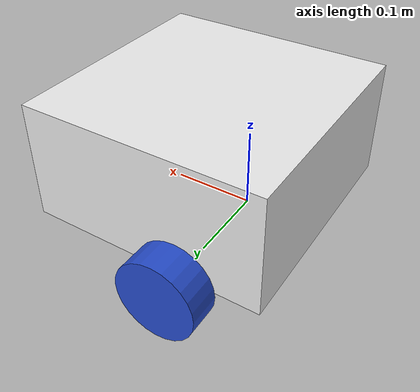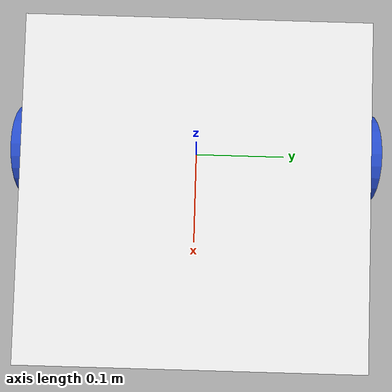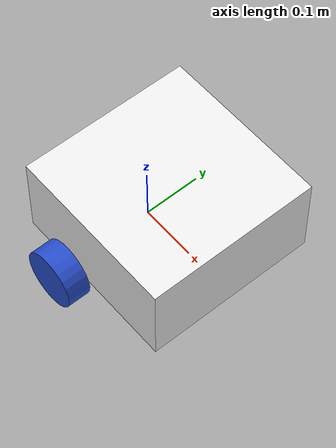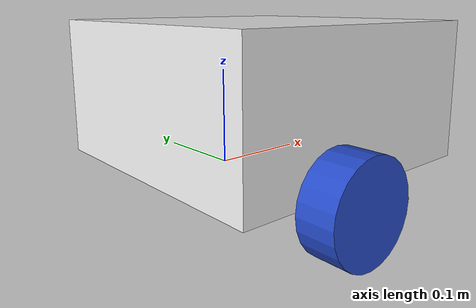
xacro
<?xml version="1.0"?>
<robot xmlns:xacro="http://www.ros.org/wiki/xacro">

    <link name="base_link"/>

    <!-- CHASSIS -->
    <xacro:property name="chassis_origin_xyz" value="0.05 0 0.125"/>
    <xacro:property name="chassis_origin_rpy" value="0 0 0"/>
    <xacro:property name="chassis_size_x" value="0.3"/>
    <xacro:property name="chassis_size_y" value="0.3"/>
    <xacro:property name="chassis_size_z" value="0.15"/>
    <link name="chassis">
        <visual>
            <origin xyz="${chassis_origin_xyz}" rpy="${chassis_origin_rpy}"/>
            <geometry>
                <box size="${chassis_size_x} ${chassis_size_y} ${chassis_size_z}"/>
            </geometry>
            <material name="white"/>
        </visual>
        <collision>
            <origin xyz="${chassis_origin_xyz}" rpy="${chassis_origin_rpy}"/>
            <geometry>
                <box size="${chassis_size_x} ${chassis_size_y} ${chassis_size_z}"/>
            </geometry>
        </collision>
        <xacro:inertial_box mass="0.1" x="${chassis_size_x}" y="${chassis_size_y}" z="${chassis_size_z}">
            <origin xyz="${chassis_origin_xyz}" rpy="${chassis_origin_rpy}"/>
        </xacro:inertial_box>
    </link>

    <joint name="chassis_joint" type="fixed">
        <parent link="base_link"/>
        <child link="chassis"/>
        <origin xyz="0 0 -0.05"/>
    </joint>

    <gazebo reference="chassis">
        <material>Gazebo/White</material>
    </gazebo>

    <xacro:property name="wheel_length" value="0.04"/>
    <xacro:property name="wheel_radius" value="0.05"/>
    <!-- LEFT WHEEL -->
    <link name="left_wheel">
        <visual>
            <geometry>
                <cylinder length="${wheel_length}" radius="${wheel_radius}"/>
            </geometry>
            <material name="blue"/>
        </visual>
        <collision>
            <geometry>
                <sphere radius="${wheel_radius}"/>
            </geometry>
        </collision>
        <xacro:inertial_cylinder mass="0.1" length="${wheel_length}" radius="${wheel_radius}">
            <origin xyz="0 0 0" rpy="0 0 0"/>
        </xacro:inertial_cylinder>
    </link>

    <xacro:property name="wheel_distance" value="0.35"/>
    <joint name="left_wheel_joint" type="continuous">
        <parent link="base_link"/>
        <child link="left_wheel"/>
        <origin xyz="0 ${wheel_distance/2} 0" rpy="-${pi/2} 0 0"/>
        <axis xyz="0 0 1"/>
    </joint>

    <gazebo reference="left_wheel">
        <material>Gazebo/Blue</material>
    </gazebo>

    <!-- RIGHT WHEEL -->
    <link name="right_wheel">
        <visual>
            <geometry>
                <cylinder length="${wheel_length}" radius="${wheel_radius}"/>
            </geometry>
            <material name="blue"/>
        </visual>
        <collision>
            <geometry>
                <sphere radius="${wheel_radius}"/>
            </geometry>
        </collision>
        <xacro:inertial_cylinder mass="0.1" length="${wheel_length}" radius="${wheel_radius}">
            <origin xyz="0 0 0" rpy="0 0 0"/>
        </xacro:inertial_cylinder>
    </link>

    <joint name="right_wheel_joint" type="continuous">
        <parent link="base_link"/>
        <child link="right_wheel"/>
        <origin xyz="0 -0.175 0" rpy="${pi/2} 0 0"/>
        <axis xyz="0 0 -1"/>
    </joint>

    <gazebo reference="right_wheel">
        <material>Gazebo/Blue</material>
    </gazebo>

    <!-- CASTER WHEEL -->
    <xacro:property name="caster_radius" value="0.05"/>
    <link name="caster_wheel">
        <visual>
            <geometry>
                <sphere radius="${caster_radius}"/>
            </geometry>
            <material name="black"/>
        </visual>
        <collision>
            <geometry>
                <sphere radius="${caster_radius}"/>
            </geometry>
        </collision>
        <xacro:inertial_sphere mass="0.1" radius="${caster_radius}">
            <origin xyz="0 0 0" rpy="0 0 0"/>
        </xacro:inertial_sphere>
    </link>

    <joint name="caster_wheel_joint" type="fixed">
        <parent link="chassis"/>
        <child link="caster_wheel"/>
        <origin xyz="0.09 0 0.05" rpy="0 0 0"/>
    </joint>

    <gazebo reference="caster_wheel">
        <material>Gazebo/Black</material>
        <mu1 value="0.001"/>
        <mu2 value="0.001"/>
    </gazebo>

    <plugin name="gazebo_ros_joint_state_publisher" filename="libgazebo_ros_joint_state_publisher.so">
        <update_rate>20</update_rate>
        <joint_name>chassis_joint</joint_name>
        <joint_name>left_wheel_joint</joint_name>
        <joint_name>right_wheel_joint</joint_name>
        <joint_name>caster_wheel_joint</joint_name>
    </plugin>

</robot>
